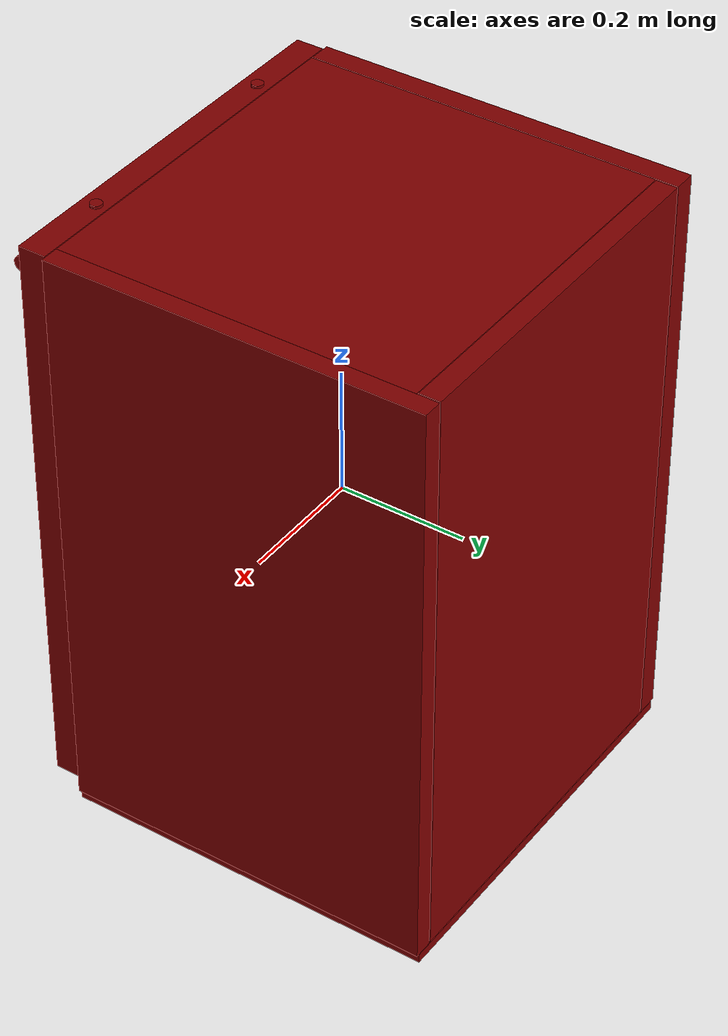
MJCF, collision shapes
<mujoco model="model">
  <compiler angle="radian"/>
  <asset>
    <mesh file="visuals/Body001.obj" name="Body001_vis"/>
    <mesh file="visuals/Button001.obj" name="Button001_vis"/>
    <mesh file="visuals/Button002.obj" name="Button002_vis"/>
    <mesh file="visuals/Door001.obj" name="Door001_vis"/>
    <mesh file="visuals/Shelf001.obj" name="Shelf001_vis"/>
    <mesh file="visuals/Shelf002.obj" name="Shelf002_vis"/>
    <texture file="visuals/T_BC001.png" name="Body001_material" type="2d"/>
    <material name="Body001_material" rgba="1 1 1 1.0" texture="Body001_material" shininess="1" specular="1"/>
    <texture file="visuals/T_BC001.png" name="Door001_material" type="2d"/>
    <material name="Door001_material" rgba="1 1 1 1.0" texture="Door001_material" shininess="1" specular="1"/>
    <texture file="visuals/T_BC001.png" name="Button001_material" type="2d"/>
    <material name="Button001_material" rgba="1 1 1 1.0" texture="Button001_material" shininess="1" specular="1"/>
    <texture file="visuals/T_BC001.png" name="Button002_material" type="2d"/>
    <material name="Button002_material" rgba="1 1 1 1.0" texture="Button002_material" shininess="1" specular="1"/>
    <texture file="visuals/T_BC001.png" name="Shelf001_material" type="2d"/>
    <material name="Shelf001_material" rgba="1 1 1 1.0" texture="Shelf001_material" shininess="1" specular="1"/>
    <texture file="visuals/T_BC001.png" name="Shelf002_material" type="2d"/>
    <material name="Shelf002_material" rgba="1 1 1 1.0" texture="Shelf002_material" shininess="1" specular="1"/>
  </asset>
  <default>
    <default class="visual">
      <geom conaffinity="0" contype="0" group="1" type="mesh"/>
    </default>
    <default class="collision">
      <geom group="0" rgba="0.5 0 0 0.5"/>
    </default>
    <default class="spawn">
      <geom group="0" rgba="1 1 1 0.5" contype="0" conaffinity="0"/>
      <site group="0" rgba="1 1 1 0.5"/>
    </default>
    <default class="region">
      <geom group="1" conaffinity="0" contype="0" rgba="0 1 0 0"/>
    </default>
  </default>
  <worldbody>
    <body>
      <body name="object">
        <geom mesh="Body001_vis" type="mesh" solimp="0.998 0.998 0.001" solref="0.001 1" density="100" friction="0.95 0.3 0.1" class="visual" material="Body001_material"/>
        <geom class="collision" type="box" pos="0.003023166675120592 0.032630667090415955 0.46358102560043335" size="0.2889005243778229 0.2784905731678009 0.010836713016033173" quat="1.0 0.0 0.0 0.0"/>
        <geom class="collision" type="box" pos="0.3069528639316559 0.04954814165830612 0.006435871124267578" size="0.015252389013767242 0.2954080104827881 0.46798184514045715" quat="1.0 0.0 0.0 0.0"/>
        <geom class="collision" type="box" pos="-0.30473703145980835 0.04954812675714493 0.006326228380203247" size="0.017468243837356567 0.2954079508781433 0.4680914878845215" quat="1.0 0.0 0.0 0.0"/>
        <geom class="collision" type="box" pos="0.0022947308607399464 0.32865333557128906 0.006889015436172485" size="0.2871079742908478 0.01630278490483761 0.46752870082855225" quat="1.0 0.0 0.0 0.0"/>
        <geom class="collision" type="box" pos="-0.0003859625430777669 0.04952313005924225 -0.47045373916625977" size="0.31707763671875 0.295432984828949 0.00743071036413312" quat="1.0 0.0 0.0 0.0"/>
        <geom class="collision" type="box" pos="0.2898258566856384 0.048035819083452225 0.19644391536712646" size="0.004989225417375565 0.2839532494544983 0.003426789538934827" quat="1.0 0.0 0.0 0.0"/>
        <geom class="collision" type="box" pos="-0.2882188558578491 0.048035819083452225 0.19644391536712646" size="0.003477426478639245 0.2839532494544983 0.003426789538934827" quat="1.0 0.0 0.0 0.0"/>
        <geom class="collision" type="box" pos="-0.2882188558578491 0.048035819083452225 -0.10029862821102142" size="0.003477426478639245 0.2839532494544983 0.003426789538934827" quat="1.0 0.0 0.0 0.0"/>
        <geom class="collision" type="box" pos="0.2898258566856384 0.048035819083452225 -0.10029862821102142" size="0.004989225417375565 0.2839532494544983 0.003426789538934827" quat="1.0 0.0 0.0 0.0"/>
        <body name="door">
          <joint axis="1.0 0.0 0.0" pos="-0.00024969506193883717 -0.3001829266548157 -0.4566528606414795" limited="true" name="door_joint" range="0.0 0.60" type="hinge" frictionloss="10" damping="2" armature=".01"/>
          <geom mesh="Door001_vis" type="mesh" solimp="0.998 0.998 0.001" solref="0.001 1" density="100" friction="0.95 0.3 0.1" class="visual" material="Door001_material"/>
          <geom class="collision" type="box" pos="-0.001718308194540441 -0.27046892046928406 0.01473449170589447" size="0.31452664732933044 0.02164296619594097 0.4582974910736084" quat="1.0 0.0 0.0 0.0" name="door_main"/>
          <geom class="collision" type="box" pos="0.24632082879543304 -0.3101164698600769 0.398721843957901" size="0.012813650071620941 0.019381284713745117 0.0163764376193285" quat="0.7309410572052002 0.0 0.6824405789375305 0.0"/>
          <geom class="collision" type="box" pos="-0.2380959391593933 -0.3101164698600769 0.3988521695137024" size="0.012395946308970451 0.019381269812583923 0.01675279811024666" quat="0.7309410572052002 0.0 0.6824405789375305 0.0"/>
          <geom class="collision" type="cylinder" pos="0.003888395382091403 -0.33332085609436035 0.3999674916267395" size="0.012235971167683601 0.2582305371761322" quat="0.7071068286895752 1.2101618374060763e-08 0.7071067690849304 -1.2101617485882343e-08" name="door_handle_main"/>
          <body name="button_lock">
            <joint axis="0.0 0.0 -1.0" pos="-0.18298566341400146 -0.266629695892334 0.47530895471572876" limited="true" name="button_lock_joint" range="0.0 0.002" type="slide" damping="1" frictionloss="1" armature=".01" stiffness="0.05" springref="-1"/>
            <geom mesh="Button001_vis" type="mesh" solimp="0.998 0.998 0.001" solref="0.001 1" density="100" friction="0.95 0.3 0.1" class="visual" material="Button001_material"/>
            <geom class="collision" type="cylinder" pos="-0.18283316493034363 -0.2666301429271698 0.4759465456008911" size="0.009277576580643654 0.002105482155457139" quat="0.7071067094802856 0.0 -0.0 -0.7071068286895752"/>
          </body>
          <body name="button_power">
            <joint axis="0.0 0.0 -1.0" pos="0.18145567178726196 -0.26662978529930115 0.47530892491340637" limited="true" name="button_power_joint" range="0.0 0.002" type="slide" damping="1" frictionloss="1" armature=".01" stiffness="0.05" springref="-1"/>
            <geom mesh="Button002_vis" type="mesh" solimp="0.998 0.998 0.001" solref="0.001 1" density="100" friction="0.95 0.3 0.1" class="visual" material="Button002_material"/>
            <geom class="collision" type="cylinder" pos="0.18147970736026764 -0.2666301429271698 0.4759465456008911" size="0.009277576580643654 0.002105482155457139" quat="0.7071067094802856 0.0 -0.0 -0.7071068286895752"/>
          </body>
        </body>
        <body name="rack1">
          <joint axis="0.0 -1.0 0.0" pos="-0.00027349358424544334 0.0512247197329998 0.13908275961875916" limited="true" name="rack1_joint" range="0.0 0.36" type="slide" damping="1" frictionloss="1" armature=".01" stiffness="0.05"/>
          <geom mesh="Shelf001_vis" type="mesh" solimp="0.998 0.998 0.001" solref="0.001 1" density="100" friction="0.95 0.3 0.1" class="visual" material="Shelf001_material"/>
          <geom class="collision" type="box" pos="-0.00012752600014209747 0.3040567934513092 0.16283395886421204" size="0.27703744173049927 0.004676167853176594 0.04543870687484741" quat="1.0 0.0 0.0 0.0"/>
          <geom class="collision" type="box" pos="-0.27362674474716187 0.04867877438664436 0.16283398866653442" size="0.010211767628788948 0.251994788646698 0.04543868452310562" quat="1.0 0.0 0.0 0.0"/>
          <geom class="collision" type="box" pos="0.27047058939933777 0.04984656348824501 0.16283398866653442" size="0.013055991381406784 0.25297093391418457 0.04543868452310562" quat="1.0 0.0 0.0 0.0"/>
          <geom class="collision" type="box" pos="-0.00723551819100976 -0.20655399560928345 0.16283395886421204" size="0.26856815814971924 0.005682230461388826 0.045438703149557114" quat="1.0 0.0 0.0 0.0"/>
          <geom class="collision" type="box" pos="-0.003118964144960046 0.051078274846076965 0.09484616667032242" size="0.26505598425865173 0.2572195827960968 0.021634727716445923" quat="1.0 0.0 0.0 0.0"/>
          <geom class="region" name="reg_rack1" type="box" pos="0.0 0.05 0.238" size="0.25 0.24 0.12"/>
        </body>
        <body name="rack0">
          <joint axis="0.0 -1.0 0.0" pos="-0.00027349358424544334 0.0512247197329998 -0.15806549787521362" limited="true" name="rack0_joint" range="0.0 0.18" type="slide" damping="1" frictionloss="1" armature=".01" stiffness="0.05"/>
          <geom mesh="Shelf002_vis" type="mesh" solimp="0.998 0.998 0.001" solref="0.001 1" density="100" friction="0.95 0.3 0.1" class="visual" material="Shelf002_material"/>
          <geom class="collision" type="box" pos="-0.003118964144960046 0.051078274846076965 -0.2036818414926529" size="0.26505598425865173 0.2572195827960968 0.021634727716445923" quat="1.0 0.0 0.0 0.0"/>
          <geom class="collision" type="box" pos="-0.00723551819100976 -0.20655399560928345 -0.13569407165050507" size="0.26856815814971924 0.005682230461388826 0.045438703149557114" quat="1.0 0.0 0.0 0.0"/>
          <geom class="collision" type="box" pos="0.27047058939933777 0.04984656348824501 -0.13569404184818268" size="0.013055991381406784 0.25297093391418457 0.04543868452310562" quat="1.0 0.0 0.0 0.0"/>
          <geom class="collision" type="box" pos="-0.27362674474716187 0.04867877438664436 -0.13569404184818268" size="0.010211767628788948 0.251994788646698 0.04543868452310562" quat="1.0 0.0 0.0 0.0"/>
          <geom class="collision" type="box" pos="-0.00012752600014209747 0.3040567934513092 -0.13569407165050507" size="0.27703744173049927 0.004676167853176594 0.04543870687484741" quat="1.0 0.0 0.0 0.0"/>
          <geom class="region" name="reg_rack0" type="box" pos="0.0 0.05 -0.06" size="0.25 0.24 0.12"/>
        </body>
        <geom class="region" name="reg_main" type="box" pos="0.0 0.02642211690545082 -0.00173337257001549" size="0.325 0.3185339868068695 0.48"/>
      </body>
    </body>
  </worldbody>
  <actuator>
    <motor name="door_joint_actuator" joint="door_joint" gear="50"/>
    <motor name="rack0_joint_actuator" joint="rack0_joint" gear="50"/>
    <motor name="rack1_joint_actuator" joint="rack1_joint" gear="50"/>
    <motor name="button_lock_joint_actuator" joint="button_lock_joint" gear="0.5"/>
    <motor name="button_power_joint_actuator" joint="button_power_joint" gear="0.5"/>
  </actuator>
</mujoco>
